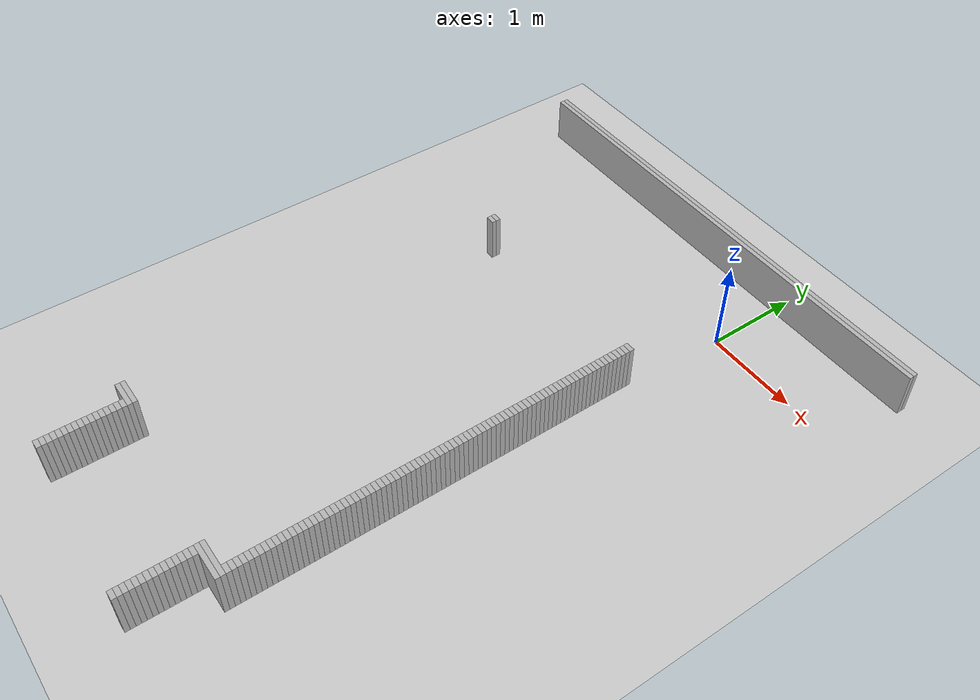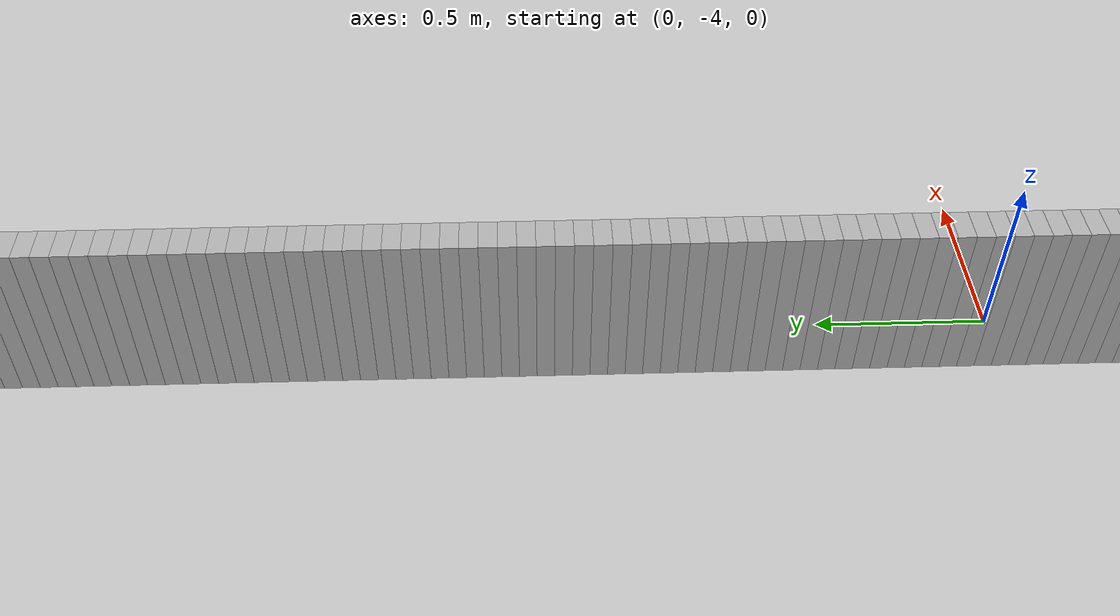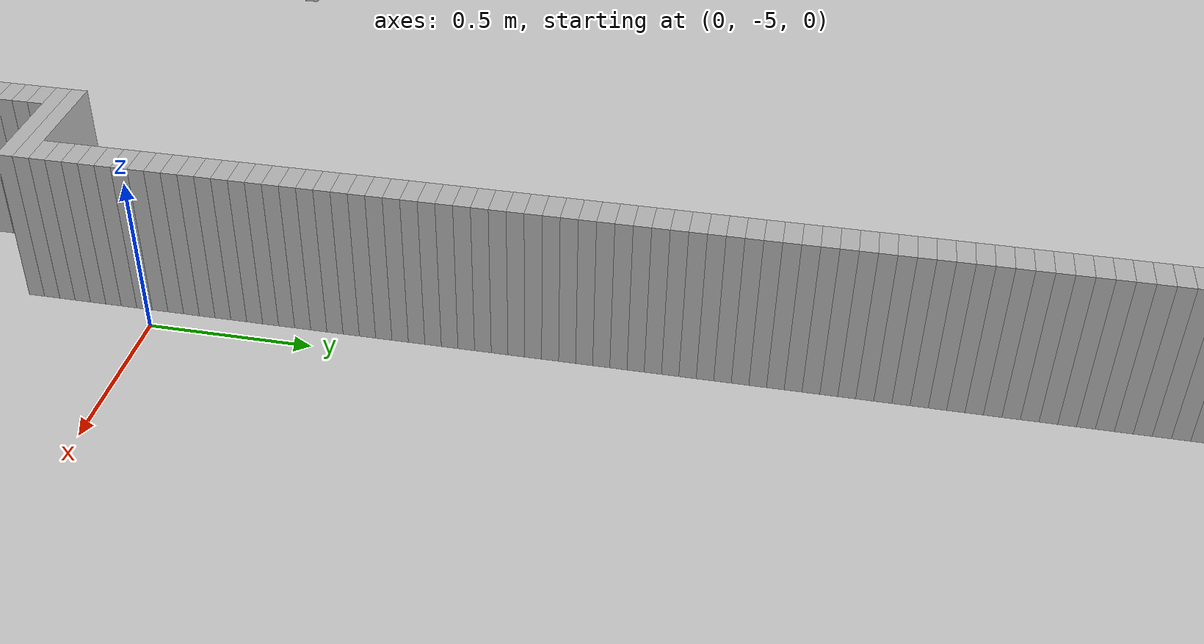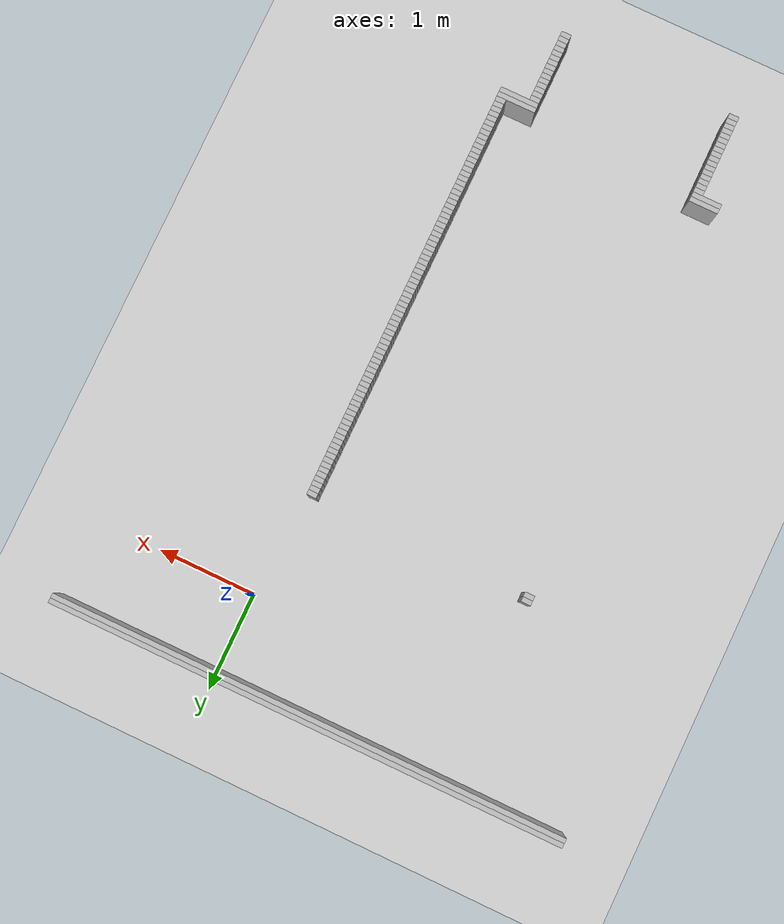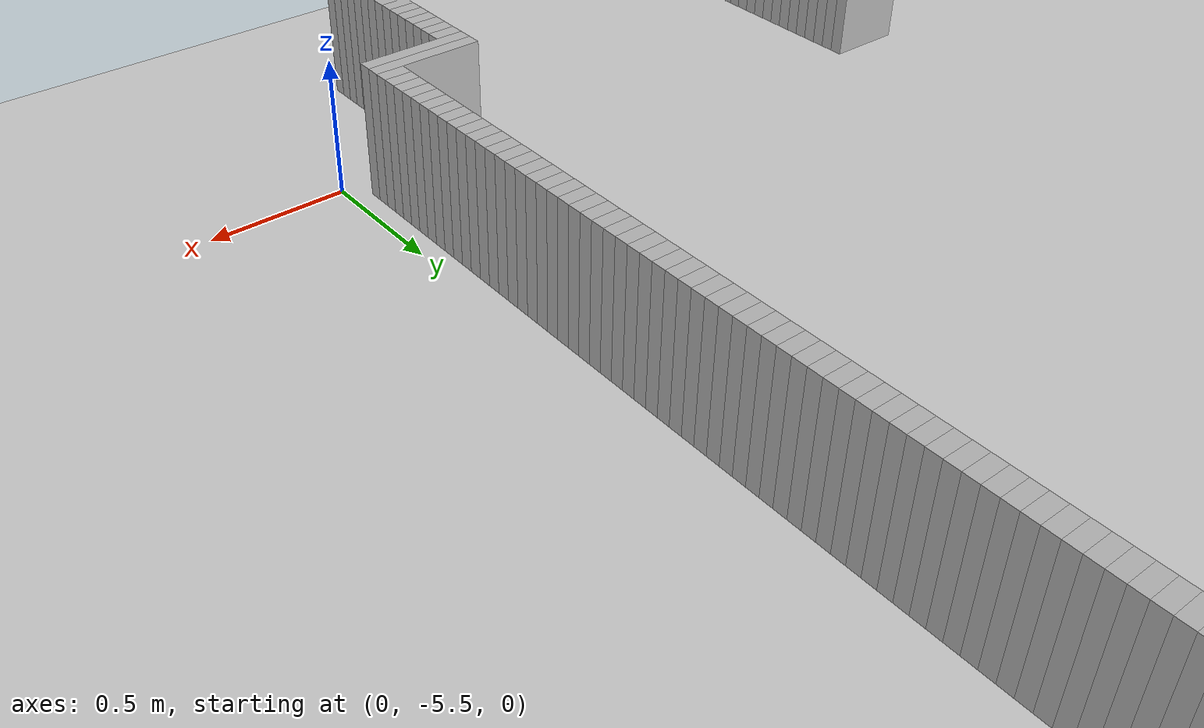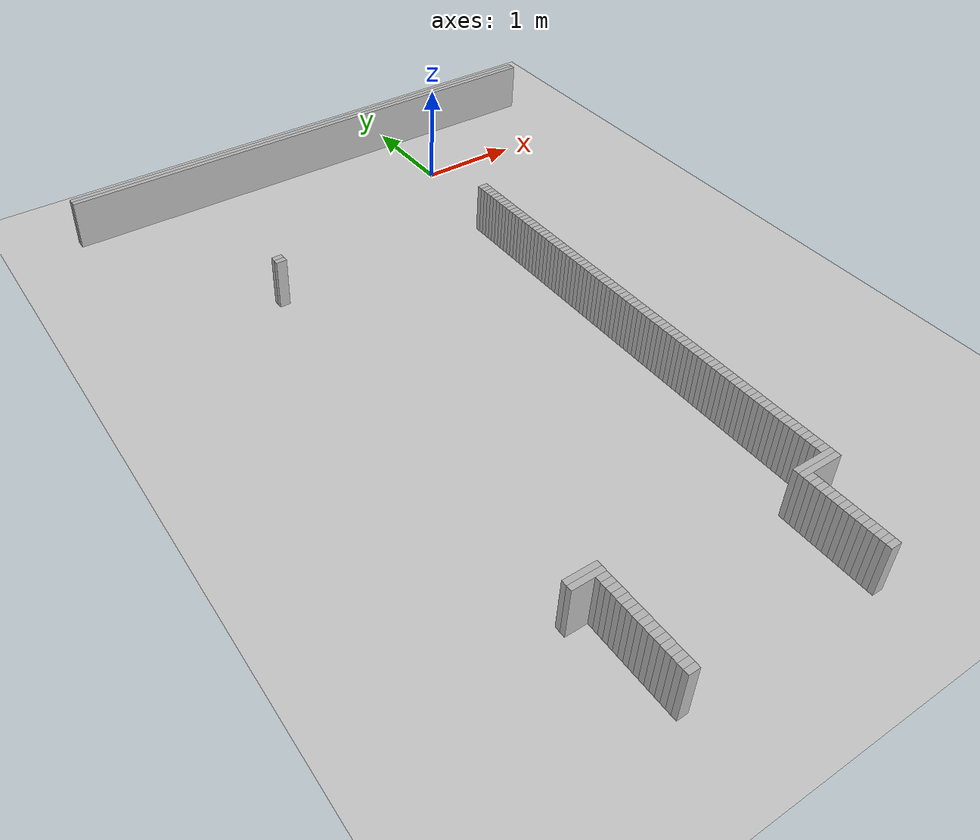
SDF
<sdf version="1.6">
 <world name="optimized_map_world">
  <include><uri>model://sun</uri></include>
  <include><uri>model://ground_plane</uri></include>
  <model name="obstacle_3">
   <static>true</static>
   <link name="link">
    <collision name="collision">
     <geometry><box><size>5.300000000000001 0.05 0.5</size></box></geometry>
    </collision>
    <visual name="visual"><geometry><box><size>5.300000000000001 0.05 0.5</size></box></geometry></visual>
   </link>
   <pose>-0.9749999999999979 0.8500000000000014 0.25 0 0 0</pose>
  </model>
  <model name="obstacle_5">
   <static>true</static>
   <link name="link">
    <collision name="collision">
     <geometry><box><size>5.300000000000001 0.05 0.5</size></box></geometry>
    </collision>
    <visual name="visual"><geometry><box><size>5.300000000000001 0.05 0.5</size></box></geometry></visual>
   </link>
   <pose>-0.9749999999999979 0.8000000000000007 0.25 0 0 0</pose>
  </model>
  <model name="obstacle_105">
   <static>true</static>
   <link name="link">
    <collision name="collision"><geometry><box><size>0.1 0.05 0.5</size></box></geometry></collision>
    <visual name="visual"><geometry><box><size>0.1 0.05 0.5</size></box></geometry></visual>
   </link>
   <pose>-2.3749999999999982 -1.0500000000000007 0.25 0 0 0</pose>
  </model>
  <model name="obstacle_112">
   <static>true</static>
   <link name="link">
    <collision name="collision"><geometry><box><size>0.1 0.05 0.5</size></box></geometry></collision>
    <visual name="visual"><geometry><box><size>0.1 0.05 0.5</size></box></geometry></visual>
   </link>
   <pose>-2.3749999999999982 -1.0999999999999979 0.25 0 0 0</pose>
  </model>
  <model name="obstacle_113">
   <static>true</static>
   <link name="link">
    <collision name="collision"><geometry><box><size>0.1 0.05 0.5</size></box></geometry></collision>
    <visual name="visual"><geometry><box><size>0.1 0.05 0.5</size></box></geometry></visual>
   </link>
   <pose>-0.125 -1.0999999999999979 0.25 0 0 0</pose>
  </model>
  <model name="obstacle_120">
   <static>true</static>
   <link name="link">
    <collision name="collision"><geometry><box><size>0.1 0.05 0.5</size></box></geometry></collision>
    <visual name="visual"><geometry><box><size>0.1 0.05 0.5</size></box></geometry></visual>
   </link>
   <pose>-0.125 -1.1499999999999986 0.25 0 0 0</pose>
  </model>
  <model name="obstacle_126">
   <static>true</static>
   <link name="link">
    <collision name="collision"><geometry><box><size>0.1 0.05 0.5</size></box></geometry></collision>
    <visual name="visual"><geometry><box><size>0.1 0.05 0.5</size></box></geometry></visual>
   </link>
   <pose>-0.125 -1.1999999999999993 0.25 0 0 0</pose>
  </model>
  <model name="obstacle_131">
   <static>true</static>
   <link name="link">
    <collision name="collision"><geometry><box><size>0.1 0.05 0.5</size></box></geometry></collision>
    <visual name="visual"><geometry><box><size>0.1 0.05 0.5</size></box></geometry></visual>
   </link>
   <pose>-0.125 -1.25 0.25 0 0 0</pose>
  </model>
  <model name="obstacle_135">
   <static>true</static>
   <link name="link">
    <collision name="collision"><geometry><box><size>0.1 0.05 0.5</size></box></geometry></collision>
    <visual name="visual"><geometry><box><size>0.1 0.05 0.5</size></box></geometry></visual>
   </link>
   <pose>-0.125 -1.3000000000000007 0.25 0 0 0</pose>
  </model>
  <model name="obstacle_139">
   <static>true</static>
   <link name="link">
    <collision name="collision"><geometry><box><size>0.1 0.05 0.5</size></box></geometry></collision>
    <visual name="visual"><geometry><box><size>0.1 0.05 0.5</size></box></geometry></visual>
   </link>
   <pose>-0.125 -1.3500000000000014 0.25 0 0 0</pose>
  </model>
  <model name="obstacle_143">
   <static>true</static>
   <link name="link">
    <collision name="collision"><geometry><box><size>0.1 0.05 0.5</size></box></geometry></collision>
    <visual name="visual"><geometry><box><size>0.1 0.05 0.5</size></box></geometry></visual>
   </link>
   <pose>-0.125 -1.3999999999999986 0.25 0 0 0</pose>
  </model>
  <model name="obstacle_147">
   <static>true</static>
   <link name="link">
    <collision name="collision"><geometry><box><size>0.1 0.05 0.5</size></box></geometry></collision>
    <visual name="visual"><geometry><box><size>0.1 0.05 0.5</size></box></geometry></visual>
   </link>
   <pose>-0.125 -1.4499999999999993 0.25 0 0 0</pose>
  </model>
  <model name="obstacle_151">
   <static>true</static>
   <link name="link">
    <collision name="collision"><geometry><box><size>0.1 0.05 0.5</size></box></geometry></collision>
    <visual name="visual"><geometry><box><size>0.1 0.05 0.5</size></box></geometry></visual>
   </link>
   <pose>-0.125 -1.5 0.25 0 0 0</pose>
  </model>
  <model name="obstacle_155">
   <static>true</static>
   <link name="link">
    <collision name="collision"><geometry><box><size>0.1 0.05 0.5</size></box></geometry></collision>
    <visual name="visual"><geometry><box><size>0.1 0.05 0.5</size></box></geometry></visual>
   </link>
   <pose>-0.125 -1.5500000000000007 0.25 0 0 0</pose>
  </model>
  <model name="obstacle_159">
   <static>true</static>
   <link name="link">
    <collision name="collision"><geometry><box><size>0.1 0.05 0.5</size></box></geometry></collision>
    <visual name="visual"><geometry><box><size>0.1 0.05 0.5</size></box></geometry></visual>
   </link>
   <pose>-0.125 -1.6000000000000014 0.25 0 0 0</pose>
  </model>
  <model name="obstacle_163">
   <static>true</static>
   <link name="link">
    <collision name="collision"><geometry><box><size>0.1 0.05 0.5</size></box></geometry></collision>
    <visual name="visual"><geometry><box><size>0.1 0.05 0.5</size></box></geometry></visual>
   </link>
   <pose>-0.125 -1.6499999999999986 0.25 0 0 0</pose>
  </model>
  <model name="obstacle_167">
   <static>true</static>
   <link name="link">
    <collision name="collision"><geometry><box><size>0.1 0.05 0.5</size></box></geometry></collision>
    <visual name="visual"><geometry><box><size>0.1 0.05 0.5</size></box></geometry></visual>
   </link>
   <pose>-0.125 -1.6999999999999993 0.25 0 0 0</pose>
  </model>
  <model name="obstacle_171">
   <static>true</static>
   <link name="link">
    <collision name="collision"><geometry><box><size>0.1 0.05 0.5</size></box></geometry></collision>
    <visual name="visual"><geometry><box><size>0.1 0.05 0.5</size></box></geometry></visual>
   </link>
   <pose>-0.125 -1.75 0.25 0 0 0</pose>
  </model>
  <model name="obstacle_175">
   <static>true</static>
   <link name="link">
    <collision name="collision"><geometry><box><size>0.1 0.05 0.5</size></box></geometry></collision>
    <visual name="visual"><geometry><box><size>0.1 0.05 0.5</size></box></geometry></visual>
   </link>
   <pose>-0.125 -1.8000000000000007 0.25 0 0 0</pose>
  </model>
  <model name="obstacle_179">
   <static>true</static>
   <link name="link">
    <collision name="collision"><geometry><box><size>0.1 0.05 0.5</size></box></geometry></collision>
    <visual name="visual"><geometry><box><size>0.1 0.05 0.5</size></box></geometry></visual>
   </link>
   <pose>-0.125 -1.8500000000000014 0.25 0 0 0</pose>
  </model>
  <model name="obstacle_183">
   <static>true</static>
   <link name="link">
    <collision name="collision"><geometry><box><size>0.1 0.05 0.5</size></box></geometry></collision>
    <visual name="visual"><geometry><box><size>0.1 0.05 0.5</size></box></geometry></visual>
   </link>
   <pose>-0.125 -1.8999999999999986 0.25 0 0 0</pose>
  </model>
  <model name="obstacle_187">
   <static>true</static>
   <link name="link">
    <collision name="collision"><geometry><box><size>0.1 0.05 0.5</size></box></geometry></collision>
    <visual name="visual"><geometry><box><size>0.1 0.05 0.5</size></box></geometry></visual>
   </link>
   <pose>-0.125 -1.9499999999999993 0.25 0 0 0</pose>
  </model>
  <model name="obstacle_191">
   <static>true</static>
   <link name="link">
    <collision name="collision"><geometry><box><size>0.1 0.05 0.5</size></box></geometry></collision>
    <visual name="visual"><geometry><box><size>0.1 0.05 0.5</size></box></geometry></visual>
   </link>
   <pose>-0.125 -2.0 0.25 0 0 0</pose>
  </model>
  <model name="obstacle_195">
   <static>true</static>
   <link name="link">
    <collision name="collision"><geometry><box><size>0.1 0.05 0.5</size></box></geometry></collision>
    <visual name="visual"><geometry><box><size>0.1 0.05 0.5</size></box></geometry></visual>
   </link>
   <pose>-0.125 -2.0500000000000007 0.25 0 0 0</pose>
  </model>
  <model name="obstacle_199">
   <static>true</static>
   <link name="link">
    <collision name="collision"><geometry><box><size>0.1 0.05 0.5</size></box></geometry></collision>
    <visual name="visual"><geometry><box><size>0.1 0.05 0.5</size></box></geometry></visual>
   </link>
   <pose>-0.125 -2.1000000000000014 0.25 0 0 0</pose>
  </model>
  <model name="obstacle_203">
   <static>true</static>
   <link name="link">
    <collision name="collision"><geometry><box><size>0.1 0.05 0.5</size></box></geometry></collision>
    <visual name="visual"><geometry><box><size>0.1 0.05 0.5</size></box></geometry></visual>
   </link>
   <pose>-0.125 -2.1499999999999986 0.25 0 0 0</pose>
  </model>
  <model name="obstacle_207">
   <static>true</static>
   <link name="link">
    <collision name="collision"><geometry><box><size>0.1 0.05 0.5</size></box></geometry></collision>
    <visual name="visual"><geometry><box><size>0.1 0.05 0.5</size></box></geometry></visual>
   </link>
   <pose>-0.125 -2.1999999999999993 0.25 0 0 0</pose>
  </model>
  <model name="obstacle_211">
   <static>true</static>
   <link name="link">
    <collision name="collision"><geometry><box><size>0.1 0.05 0.5</size></box></geometry></collision>
    <visual name="visual"><geometry><box><size>0.1 0.05 0.5</size></box></geometry></visual>
   </link>
   <pose>-0.125 -2.25 0.25 0 0 0</pose>
  </model>
  <model name="obstacle_215">
   <static>true</static>
   <link name="link">
    <collision name="collision"><geometry><box><size>0.1 0.05 0.5</size></box></geometry></collision>
    <visual name="visual"><geometry><box><size>0.1 0.05 0.5</size></box></geometry></visual>
   </link>
   <pose>-0.125 -2.3000000000000007 0.25 0 0 0</pose>
  </model>
  <model name="obstacle_219">
   <static>true</static>
   <link name="link">
    <collision name="collision"><geometry><box><size>0.1 0.05 0.5</size></box></geometry></collision>
    <visual name="visual"><geometry><box><size>0.1 0.05 0.5</size></box></geometry></visual>
   </link>
   <pose>-0.125 -2.3500000000000014 0.25 0 0 0</pose>
  </model>
  <model name="obstacle_223">
   <static>true</static>
   <link name="link">
    <collision name="collision"><geometry><box><size>0.1 0.05 0.5</size></box></geometry></collision>
    <visual name="visual"><geometry><box><size>0.1 0.05 0.5</size></box></geometry></visual>
   </link>
   <pose>-0.125 -2.3999999999999986 0.25 0 0 0</pose>
  </model>
  <model name="obstacle_227">
   <static>true</static>
   <link name="link">
    <collision name="collision"><geometry><box><size>0.1 0.05 0.5</size></box></geometry></collision>
    <visual name="visual"><geometry><box><size>0.1 0.05 0.5</size></box></geometry></visual>
   </link>
   <pose>-0.125 -2.4499999999999993 0.25 0 0 0</pose>
  </model>
  <model name="obstacle_231">
   <static>true</static>
   <link name="link">
    <collision name="collision"><geometry><box><size>0.1 0.05 0.5</size></box></geometry></collision>
    <visual name="visual"><geometry><box><size>0.1 0.05 0.5</size></box></geometry></visual>
   </link>
   <pose>-0.125 -2.5 0.25 0 0 0</pose>
  </model>
  <model name="obstacle_235">
   <static>true</static>
   <link name="link">
    <collision name="collision"><geometry><box><size>0.1 0.05 0.5</size></box></geometry></collision>
    <visual name="visual"><geometry><box><size>0.1 0.05 0.5</size></box></geometry></visual>
   </link>
   <pose>-0.125 -2.5500000000000007 0.25 0 0 0</pose>
  </model>
  <model name="obstacle_239">
   <static>true</static>
   <link name="link">
    <collision name="collision"><geometry><box><size>0.1 0.05 0.5</size></box></geometry></collision>
    <visual name="visual"><geometry><box><size>0.1 0.05 0.5</size></box></geometry></visual>
   </link>
   <pose>-0.125 -2.6000000000000014 0.25 0 0 0</pose>
  </model>
  <model name="obstacle_243">
   <static>true</static>
   <link name="link">
    <collision name="collision"><geometry><box><size>0.1 0.05 0.5</size></box></geometry></collision>
    <visual name="visual"><geometry><box><size>0.1 0.05 0.5</size></box></geometry></visual>
   </link>
   <pose>-0.125 -2.6499999999999986 0.25 0 0 0</pose>
  </model>
  <model name="obstacle_247">
   <static>true</static>
   <link name="link">
    <collision name="collision"><geometry><box><size>0.1 0.05 0.5</size></box></geometry></collision>
    <visual name="visual"><geometry><box><size>0.1 0.05 0.5</size></box></geometry></visual>
   </link>
   <pose>-0.125 -2.6999999999999993 0.25 0 0 0</pose>
  </model>
  <model name="obstacle_251">
   <static>true</static>
   <link name="link">
    <collision name="collision"><geometry><box><size>0.1 0.05 0.5</size></box></geometry></collision>
    <visual name="visual"><geometry><box><size>0.1 0.05 0.5</size></box></geometry></visual>
   </link>
   <pose>-0.125 -2.75 0.25 0 0 0</pose>
  </model>
  <model name="obstacle_255">
   <static>true</static>
   <link name="link">
    <collision name="collision"><geometry><box><size>0.1 0.05 0.5</size></box></geometry></collision>
    <visual name="visual"><geometry><box><size>0.1 0.05 0.5</size></box></geometry></visual>
   </link>
   <pose>-0.125 -2.8000000000000007 0.25 0 0 0</pose>
  </model>
  <model name="obstacle_259">
   <static>true</static>
   <link name="link">
    <collision name="collision"><geometry><box><size>0.1 0.05 0.5</size></box></geometry></collision>
    <visual name="visual"><geometry><box><size>0.1 0.05 0.5</size></box></geometry></visual>
   </link>
   <pose>-0.125 -2.8500000000000014 0.25 0 0 0</pose>
  </model>
  <model name="obstacle_263">
   <static>true</static>
   <link name="link">
    <collision name="collision"><geometry><box><size>0.1 0.05 0.5</size></box></geometry></collision>
    <visual name="visual"><geometry><box><size>0.1 0.05 0.5</size></box></geometry></visual>
   </link>
   <pose>-0.125 -2.8999999999999986 0.25 0 0 0</pose>
  </model>
  <model name="obstacle_267">
   <static>true</static>
   <link name="link">
    <collision name="collision"><geometry><box><size>0.1 0.05 0.5</size></box></geometry></collision>
    <visual name="visual"><geometry><box><size>0.1 0.05 0.5</size></box></geometry></visual>
   </link>
   <pose>-0.125 -2.9499999999999993 0.25 0 0 0</pose>
  </model>
  <model name="obstacle_271">
   <static>true</static>
   <link name="link">
    <collision name="collision"><geometry><box><size>0.1 0.05 0.5</size></box></geometry></collision>
    <visual name="visual"><geometry><box><size>0.1 0.05 0.5</size></box></geometry></visual>
   </link>
   <pose>-0.125 -3.0 0.25 0 0 0</pose>
  </model>
  <model name="obstacle_275">
   <static>true</static>
   <link name="link">
    <collision name="collision"><geometry><box><size>0.1 0.05 0.5</size></box></geometry></collision>
    <visual name="visual"><geometry><box><size>0.1 0.05 0.5</size></box></geometry></visual>
   </link>
   <pose>-0.125 -3.0500000000000007 0.25 0 0 0</pose>
  </model>
  <model name="obstacle_279">
   <static>true</static>
   <link name="link">
    <collision name="collision"><geometry><box><size>0.1 0.05 0.5</size></box></geometry></collision>
    <visual name="visual"><geometry><box><size>0.1 0.05 0.5</size></box></geometry></visual>
   </link>
   <pose>-0.125 -3.1000000000000014 0.25 0 0 0</pose>
  </model>
  <model name="obstacle_283">
   <static>true</static>
   <link name="link">
    <collision name="collision"><geometry><box><size>0.1 0.05 0.5</size></box></geometry></collision>
    <visual name="visual"><geometry><box><size>0.1 0.05 0.5</size></box></geometry></visual>
   </link>
   <pose>-0.125 -3.1499999999999986 0.25 0 0 0</pose>
  </model>
  <model name="obstacle_287">
   <static>true</static>
   <link name="link">
    <collision name="collision"><geometry><box><size>0.1 0.05 0.5</size></box></geometry></collision>
    <visual name="visual"><geometry><box><size>0.1 0.05 0.5</size></box></geometry></visual>
   </link>
   <pose>-0.125 -3.1999999999999993 0.25 0 0 0</pose>
  </model>
  <model name="obstacle_291">
   <static>true</static>
   <link name="link">
    <collision name="collision"><geometry><box><size>0.1 0.05 0.5</size></box></geometry></collision>
    <visual name="visual"><geometry><box><size>0.1 0.05 0.5</size></box></geometry></visual>
   </link>
   <pose>-0.125 -3.25 0.25 0 0 0</pose>
  </model>
  <model name="obstacle_295">
   <static>true</static>
   <link name="link">
    <collision name="collision"><geometry><box><size>0.1 0.05 0.5</size></box></geometry></collision>
    <visual name="visual"><geometry><box><size>0.1 0.05 0.5</size></box></geometry></visual>
   </link>
   <pose>-0.125 -3.3000000000000007 0.25 0 0 0</pose>
  </model>
  <model name="obstacle_299">
   <static>true</static>
   <link name="link">
    <collision name="collision"><geometry><box><size>0.1 0.05 0.5</size></box></geometry></collision>
    <visual name="visual"><geometry><box><size>0.1 0.05 0.5</size></box></geometry></visual>
   </link>
   <pose>-0.125 -3.3500000000000014 0.25 0 0 0</pose>
  </model>
  <model name="obstacle_303">
   <static>true</static>
   <link name="link">
    <collision name="collision"><geometry><box><size>0.1 0.05 0.5</size></box></geometry></collision>
    <visual name="visual"><geometry><box><size>0.1 0.05 0.5</size></box></geometry></visual>
   </link>
   <pose>-0.125 -3.3999999999999986 0.25 0 0 0</pose>
  </model>
  <model name="obstacle_307">
   <static>true</static>
   <link name="link">
    <collision name="collision"><geometry><box><size>0.1 0.05 0.5</size></box></geometry></collision>
    <visual name="visual"><geometry><box><size>0.1 0.05 0.5</size></box></geometry></visual>
   </link>
   <pose>-0.125 -3.4499999999999993 0.25 0 0 0</pose>
  </model>
  <model name="obstacle_311">
   <static>true</static>
   <link name="link">
    <collision name="collision"><geometry><box><size>0.1 0.05 0.5</size></box></geometry></collision>
    <visual name="visual"><geometry><box><size>0.1 0.05 0.5</size></box></geometry></visual>
   </link>
   <pose>-0.125 -3.5 0.25 0 0 0</pose>
  </model>
  <model name="obstacle_315">
   <static>true</static>
   <link name="link">
    <collision name="collision"><geometry><box><size>0.1 0.05 0.5</size></box></geometry></collision>
    <visual name="visual"><geometry><box><size>0.1 0.05 0.5</size></box></geometry></visual>
   </link>
   <pose>-0.125 -3.5500000000000007 0.25 0 0 0</pose>
  </model>
  <model name="obstacle_319">
   <static>true</static>
   <link name="link">
    <collision name="collision"><geometry><box><size>0.1 0.05 0.5</size></box></geometry></collision>
    <visual name="visual"><geometry><box><size>0.1 0.05 0.5</size></box></geometry></visual>
   </link>
   <pose>-0.125 -3.6000000000000014 0.25 0 0 0</pose>
  </model>
  <model name="obstacle_323">
   <static>true</static>
   <link name="link">
    <collision name="collision"><geometry><box><size>0.1 0.05 0.5</size></box></geometry></collision>
    <visual name="visual"><geometry><box><size>0.1 0.05 0.5</size></box></geometry></visual>
   </link>
   <pose>-0.125 -3.6499999999999986 0.25 0 0 0</pose>
  </model>
  <model name="obstacle_327">
   <static>true</static>
   <link name="link">
    <collision name="collision"><geometry><box><size>0.1 0.05 0.5</size></box></geometry></collision>
    <visual name="visual"><geometry><box><size>0.1 0.05 0.5</size></box></geometry></visual>
   </link>
   <pose>-0.125 -3.6999999999999993 0.25 0 0 0</pose>
  </model>
  <model name="obstacle_331">
   <static>true</static>
   <link name="link">
    <collision name="collision"><geometry><box><size>0.1 0.05 0.5</size></box></geometry></collision>
    <visual name="visual"><geometry><box><size>0.1 0.05 0.5</size></box></geometry></visual>
   </link>
   <pose>-0.125 -3.75 0.25 0 0 0</pose>
  </model>
  <model name="obstacle_335">
   <static>true</static>
   <link name="link">
    <collision name="collision"><geometry><box><size>0.1 0.05 0.5</size></box></geometry></collision>
    <visual name="visual"><geometry><box><size>0.1 0.05 0.5</size></box></geometry></visual>
   </link>
   <pose>-0.125 -3.8000000000000007 0.25 0 0 0</pose>
  </model>
  <model name="obstacle_339">
   <static>true</static>
   <link name="link">
    <collision name="collision"><geometry><box><size>0.1 0.05 0.5</size></box></geometry></collision>
    <visual name="visual"><geometry><box><size>0.1 0.05 0.5</size></box></geometry></visual>
   </link>
   <pose>-0.125 -3.8500000000000014 0.25 0 0 0</pose>
  </model>
  <model name="obstacle_343">
   <static>true</static>
   <link name="link">
    <collision name="collision"><geometry><box><size>0.1 0.05 0.5</size></box></geometry></collision>
    <visual name="visual"><geometry><box><size>0.1 0.05 0.5</size></box></geometry></visual>
   </link>
   <pose>-0.125 -3.8999999999999986 0.25 0 0 0</pose>
  </model>
  <model name="obstacle_347">
   <static>true</static>
   <link name="link">
    <collision name="collision"><geometry><box><size>0.1 0.05 0.5</size></box></geometry></collision>
    <visual name="visual"><geometry><box><size>0.1 0.05 0.5</size></box></geometry></visual>
   </link>
   <pose>-0.125 -3.9499999999999993 0.25 0 0 0</pose>
  </model>
  <model name="obstacle_351">
   <static>true</static>
   <link name="link">
    <collision name="collision"><geometry><box><size>0.1 0.05 0.5</size></box></geometry></collision>
    <visual name="visual"><geometry><box><size>0.1 0.05 0.5</size></box></geometry></visual>
   </link>
   <pose>-0.125 -4.0 0.25 0 0 0</pose>
  </model>
  <model name="obstacle_355">
   <static>true</static>
   <link name="link">
    <collision name="collision"><geometry><box><size>0.1 0.05 0.5</size></box></geometry></collision>
    <visual name="visual"><geometry><box><size>0.1 0.05 0.5</size></box></geometry></visual>
   </link>
   <pose>-0.125 -4.050000000000001 0.25 0 0 0</pose>
  </model>
  <model name="obstacle_359">
   <static>true</static>
   <link name="link">
    <collision name="collision"><geometry><box><size>0.1 0.05 0.5</size></box></geometry></collision>
    <visual name="visual"><geometry><box><size>0.1 0.05 0.5</size></box></geometry></visual>
   </link>
   <pose>-0.125 -4.100000000000001 0.25 0 0 0</pose>
  </model>
  <model name="obstacle_363">
   <static>true</static>
   <link name="link">
    <collision name="collision"><geometry><box><size>0.1 0.05 0.5</size></box></geometry></collision>
    <visual name="visual"><geometry><box><size>0.1 0.05 0.5</size></box></geometry></visual>
   </link>
   <pose>-0.125 -4.149999999999999 0.25 0 0 0</pose>
  </model>
  <model name="obstacle_367">
   <static>true</static>
   <link name="link">
    <collision name="collision"><geometry><box><size>0.1 0.05 0.5</size></box></geometry></collision>
    <visual name="visual"><geometry><box><size>0.1 0.05 0.5</size></box></geometry></visual>
   </link>
   <pose>-0.125 -4.199999999999999 0.25 0 0 0</pose>
  </model>
  <model name="obstacle_371">
   <static>true</static>
   <link name="link">
    <collision name="collision"><geometry><box><size>0.1 0.05 0.5</size></box></geometry></collision>
    <visual name="visual"><geometry><box><size>0.1 0.05 0.5</size></box></geometry></visual>
   </link>
   <pose>-0.125 -4.25 0.25 0 0 0</pose>
  </model>
  <model name="obstacle_375">
   <static>true</static>
   <link name="link">
    <collision name="collision"><geometry><box><size>0.1 0.05 0.5</size></box></geometry></collision>
    <visual name="visual"><geometry><box><size>0.1 0.05 0.5</size></box></geometry></visual>
   </link>
   <pose>-0.125 -4.300000000000001 0.25 0 0 0</pose>
  </model>
  <model name="obstacle_379">
   <static>true</static>
   <link name="link">
    <collision name="collision"><geometry><box><size>0.1 0.05 0.5</size></box></geometry></collision>
    <visual name="visual"><geometry><box><size>0.1 0.05 0.5</size></box></geometry></visual>
   </link>
   <pose>-0.125 -4.35 0.25 0 0 0</pose>
  </model>
  <model name="obstacle_383">
   <static>true</static>
   <link name="link">
    <collision name="collision"><geometry><box><size>0.1 0.05 0.5</size></box></geometry></collision>
    <visual name="visual"><geometry><box><size>0.1 0.05 0.5</size></box></geometry></visual>
   </link>
   <pose>-0.125 -4.4 0.25 0 0 0</pose>
  </model>
  <model name="obstacle_387">
   <static>true</static>
   <link name="link">
    <collision name="collision"><geometry><box><size>0.1 0.05 0.5</size></box></geometry></collision>
    <visual name="visual"><geometry><box><size>0.1 0.05 0.5</size></box></geometry></visual>
   </link>
   <pose>-0.125 -4.449999999999999 0.25 0 0 0</pose>
  </model>
  <model name="obstacle_391">
   <static>true</static>
   <link name="link">
    <collision name="collision"><geometry><box><size>0.1 0.05 0.5</size></box></geometry></collision>
    <visual name="visual"><geometry><box><size>0.1 0.05 0.5</size></box></geometry></visual>
   </link>
   <pose>-0.125 -4.5 0.25 0 0 0</pose>
  </model>
  <model name="obstacle_395">
   <static>true</static>
   <link name="link">
    <collision name="collision"><geometry><box><size>0.1 0.05 0.5</size></box></geometry></collision>
    <visual name="visual"><geometry><box><size>0.1 0.05 0.5</size></box></geometry></visual>
   </link>
   <pose>-0.125 -4.550000000000001 0.25 0 0 0</pose>
  </model>
  <model name="obstacle_399">
   <static>true</static>
   <link name="link">
    <collision name="collision"><geometry><box><size>0.1 0.05 0.5</size></box></geometry></collision>
    <visual name="visual"><geometry><box><size>0.1 0.05 0.5</size></box></geometry></visual>
   </link>
   <pose>-0.125 -4.6 0.25 0 0 0</pose>
  </model>
  <model name="obstacle_403">
   <static>true</static>
   <link name="link">
    <collision name="collision"><geometry><box><size>0.1 0.05 0.5</size></box></geometry></collision>
    <visual name="visual"><geometry><box><size>0.1 0.05 0.5</size></box></geometry></visual>
   </link>
   <pose>-0.125 -4.65 0.25 0 0 0</pose>
  </model>
  <model name="obstacle_407">
   <static>true</static>
   <link name="link">
    <collision name="collision"><geometry><box><size>0.1 0.05 0.5</size></box></geometry></collision>
    <visual name="visual"><geometry><box><size>0.1 0.05 0.5</size></box></geometry></visual>
   </link>
   <pose>-0.125 -4.699999999999999 0.25 0 0 0</pose>
  </model>
  <model name="obstacle_411">
   <static>true</static>
   <link name="link">
    <collision name="collision"><geometry><box><size>0.1 0.05 0.5</size></box></geometry></collision>
    <visual name="visual"><geometry><box><size>0.1 0.05 0.5</size></box></geometry></visual>
   </link>
   <pose>-0.125 -4.75 0.25 0 0 0</pose>
  </model>
  <model name="obstacle_415">
   <static>true</static>
   <link name="link">
    <collision name="collision"><geometry><box><size>0.1 0.05 0.5</size></box></geometry></collision>
    <visual name="visual"><geometry><box><size>0.1 0.05 0.5</size></box></geometry></visual>
   </link>
   <pose>-0.125 -4.800000000000001 0.25 0 0 0</pose>
  </model>
  <model name="obstacle_419">
   <static>true</static>
   <link name="link">
    <collision name="collision"><geometry><box><size>0.1 0.05 0.5</size></box></geometry></collision>
    <visual name="visual"><geometry><box><size>0.1 0.05 0.5</size></box></geometry></visual>
   </link>
   <pose>-0.125 -4.85 0.25 0 0 0</pose>
  </model>
  <model name="obstacle_423">
   <static>true</static>
   <link name="link">
    <collision name="collision"><geometry><box><size>0.1 0.05 0.5</size></box></geometry></collision>
    <visual name="visual"><geometry><box><size>0.1 0.05 0.5</size></box></geometry></visual>
   </link>
   <pose>-0.125 -4.9 0.25 0 0 0</pose>
  </model>
  <model name="obstacle_427">
   <static>true</static>
   <link name="link">
    <collision name="collision"><geometry><box><size>0.1 0.05 0.5</size></box></geometry></collision>
    <visual name="visual"><geometry><box><size>0.1 0.05 0.5</size></box></geometry></visual>
   </link>
   <pose>-0.125 -4.949999999999999 0.25 0 0 0</pose>
  </model>
  <model name="obstacle_431">
   <static>true</static>
   <link name="link">
    <collision name="collision"><geometry><box><size>0.1 0.05 0.5</size></box></geometry></collision>
    <visual name="visual"><geometry><box><size>0.1 0.05 0.5</size></box></geometry></visual>
   </link>
   <pose>-0.125 -5.0 0.25 0 0 0</pose>
  </model>
  <model name="obstacle_435">
   <static>true</static>
   <link name="link">
    <collision name="collision"><geometry><box><size>0.1 0.05 0.5</size></box></geometry></collision>
    <visual name="visual"><geometry><box><size>0.1 0.05 0.5</size></box></geometry></visual>
   </link>
   <pose>-0.125 -5.050000000000001 0.25 0 0 0</pose>
  </model>
  <model name="obstacle_439">
   <static>true</static>
   <link name="link">
    <collision name="collision"><geometry><box><size>0.1 0.05 0.5</size></box></geometry></collision>
    <visual name="visual"><geometry><box><size>0.1 0.05 0.5</size></box></geometry></visual>
   </link>
   <pose>-0.125 -5.1 0.25 0 0 0</pose>
  </model>
  <model name="obstacle_443">
   <static>true</static>
   <link name="link">
    <collision name="collision"><geometry><box><size>0.1 0.05 0.5</size></box></geometry></collision>
    <visual name="visual"><geometry><box><size>0.1 0.05 0.5</size></box></geometry></visual>
   </link>
   <pose>-0.125 -5.15 0.25 0 0 0</pose>
  </model>
  <model name="obstacle_446">
   <static>true</static>
   <link name="link">
    <collision name="collision">
     <geometry><box><size>0.30000000000000004 0.05 0.5</size></box></geometry>
    </collision>
    <visual name="visual"><geometry><box><size>0.30000000000000004 0.05 0.5</size></box></geometry></visual>
   </link>
   <pose>-2.3249999999999993 -5.199999999999999 0.25 0 0 0</pose>
  </model>
  <model name="obstacle_447">
   <static>true</static>
   <link name="link">
    <collision name="collision"><geometry><box><size>0.1 0.05 0.5</size></box></geometry></collision>
    <visual name="visual"><geometry><box><size>0.1 0.05 0.5</size></box></geometry></visual>
   </link>
   <pose>-0.125 -5.199999999999999 0.25 0 0 0</pose>
  </model>
  <model name="obstacle_450">
   <static>true</static>
   <link name="link">
    <collision name="collision">
     <geometry><box><size>0.30000000000000004 0.05 0.5</size></box></geometry>
    </collision>
    <visual name="visual"><geometry><box><size>0.30000000000000004 0.05 0.5</size></box></geometry></visual>
   </link>
   <pose>-2.3249999999999993 -5.25 0.25 0 0 0</pose>
  </model>
  <model name="obstacle_451">
   <static>true</static>
   <link name="link">
    <collision name="collision"><geometry><box><size>0.1 0.05 0.5</size></box></geometry></collision>
    <visual name="visual"><geometry><box><size>0.1 0.05 0.5</size></box></geometry></visual>
   </link>
   <pose>-0.125 -5.25 0.25 0 0 0</pose>
  </model>
  <model name="obstacle_454">
   <static>true</static>
   <link name="link">
    <collision name="collision"><geometry><box><size>0.1 0.05 0.5</size></box></geometry></collision>
    <visual name="visual"><geometry><box><size>0.1 0.05 0.5</size></box></geometry></visual>
   </link>
   <pose>-2.224999999999998 -5.300000000000001 0.25 0 0 0</pose>
  </model>
  <model name="obstacle_455">
   <static>true</static>
   <link name="link">
    <collision name="collision"><geometry><box><size>0.1 0.05 0.5</size></box></geometry></collision>
    <visual name="visual"><geometry><box><size>0.1 0.05 0.5</size></box></geometry></visual>
   </link>
   <pose>-0.125 -5.300000000000001 0.25 0 0 0</pose>
  </model>
  <model name="obstacle_458">
   <static>true</static>
   <link name="link">
    <collision name="collision"><geometry><box><size>0.1 0.05 0.5</size></box></geometry></collision>
    <visual name="visual"><geometry><box><size>0.1 0.05 0.5</size></box></geometry></visual>
   </link>
   <pose>-2.224999999999998 -5.35 0.25 0 0 0</pose>
  </model>
  <model name="obstacle_459">
   <static>true</static>
   <link name="link">
    <collision name="collision"><geometry><box><size>0.4 0.05 0.5</size></box></geometry></collision>
    <visual name="visual"><geometry><box><size>0.4 0.05 0.5</size></box></geometry></visual>
   </link>
   <pose>-0.2749999999999986 -5.35 0.25 0 0 0</pose>
  </model>
  <model name="obstacle_462">
   <static>true</static>
   <link name="link">
    <collision name="collision"><geometry><box><size>0.1 0.05 0.5</size></box></geometry></collision>
    <visual name="visual"><geometry><box><size>0.1 0.05 0.5</size></box></geometry></visual>
   </link>
   <pose>-2.224999999999998 -5.4 0.25 0 0 0</pose>
  </model>
  <model name="obstacle_463">
   <static>true</static>
   <link name="link">
    <collision name="collision"><geometry><box><size>0.4 0.05 0.5</size></box></geometry></collision>
    <visual name="visual"><geometry><box><size>0.4 0.05 0.5</size></box></geometry></visual>
   </link>
   <pose>-0.2749999999999986 -5.4 0.25 0 0 0</pose>
  </model>
  <model name="obstacle_466">
   <static>true</static>
   <link name="link">
    <collision name="collision"><geometry><box><size>0.1 0.05 0.5</size></box></geometry></collision>
    <visual name="visual"><geometry><box><size>0.1 0.05 0.5</size></box></geometry></visual>
   </link>
   <pose>-2.224999999999998 -5.449999999999999 0.25 0 0 0</pose>
  </model>
  <model name="obstacle_467">
   <static>true</static>
   <link name="link">
    <collision name="collision"><geometry><box><size>0.1 0.05 0.5</size></box></geometry></collision>
    <visual name="visual"><geometry><box><size>0.1 0.05 0.5</size></box></geometry></visual>
   </link>
   <pose>-0.42499999999999716 -5.449999999999999 0.25 0 0 0</pose>
  </model>
  <model name="obstacle_470">
   <static>true</static>
   <link name="link">
    <collision name="collision"><geometry><box><size>0.1 0.05 0.5</size></box></geometry></collision>
    <visual name="visual"><geometry><box><size>0.1 0.05 0.5</size></box></geometry></visual>
   </link>
   <pose>-2.224999999999998 -5.5 0.25 0 0 0</pose>
  </model>
  <model name="obstacle_471">
   <static>true</static>
   <link name="link">
    <collision name="collision"><geometry><box><size>0.1 0.05 0.5</size></box></geometry></collision>
    <visual name="visual"><geometry><box><size>0.1 0.05 0.5</size></box></geometry></visual>
   </link>
   <pose>-0.42499999999999716 -5.5 0.25 0 0 0</pose>
  </model>
  <model name="obstacle_474">
   <static>true</static>
   <link name="link">
    <collision name="collision"><geometry><box><size>0.1 0.05 0.5</size></box></geometry></collision>
    <visual name="visual"><geometry><box><size>0.1 0.05 0.5</size></box></geometry></visual>
   </link>
   <pose>-2.224999999999998 -5.550000000000001 0.25 0 0 0</pose>
  </model>
  <model name="obstacle_475">
   <static>true</static>
   <link name="link">
    <collision name="collision"><geometry><box><size>0.1 0.05 0.5</size></box></geometry></collision>
    <visual name="visual"><geometry><box><size>0.1 0.05 0.5</size></box></geometry></visual>
   </link>
   <pose>-0.42499999999999716 -5.550000000000001 0.25 0 0 0</pose>
  </model>
  <model name="obstacle_478">
   <static>true</static>
   <link name="link">
    <collision name="collision"><geometry><box><size>0.1 0.05 0.5</size></box></geometry></collision>
    <visual name="visual"><geometry><box><size>0.1 0.05 0.5</size></box></geometry></visual>
   </link>
   <pose>-2.224999999999998 -5.6 0.25 0 0 0</pose>
  </model>
  <model name="obstacle_479">
   <static>true</static>
   <link name="link">
    <collision name="collision"><geometry><box><size>0.1 0.05 0.5</size></box></geometry></collision>
    <visual name="visual"><geometry><box><size>0.1 0.05 0.5</size></box></geometry></visual>
   </link>
   <pose>-0.42499999999999716 -5.6 0.25 0 0 0</pose>
  </model>
  <model name="obstacle_482">
   <static>true</static>
   <link name="link">
    <collision name="collision"><geometry><box><size>0.1 0.05 0.5</size></box></geometry></collision>
    <visual name="visual"><geometry><box><size>0.1 0.05 0.5</size></box></geometry></visual>
   </link>
   <pose>-2.224999999999998 -5.65 0.25 0 0 0</pose>
  </model>
  <model name="obstacle_483">
   <static>true</static>
   <link name="link">
    <collision name="collision"><geometry><box><size>0.1 0.05 0.5</size></box></geometry></collision>
    <visual name="visual"><geometry><box><size>0.1 0.05 0.5</size></box></geometry></visual>
   </link>
   <pose>-0.42499999999999716 -5.65 0.25 0 0 0</pose>
  </model>
  <model name="obstacle_486">
   <static>true</static>
   <link name="link">
    <collision name="collision"><geometry><box><size>0.1 0.05 0.5</size></box></geometry></collision>
    <visual name="visual"><geometry><box><size>0.1 0.05 0.5</size></box></geometry></visual>
   </link>
   <pose>-2.224999999999998 -5.699999999999999 0.25 0 0 0</pose>
  </model>
  <model name="obstacle_487">
   <static>true</static>
   <link name="link">
    <collision name="collision"><geometry><box><size>0.1 0.05 0.5</size></box></geometry></collision>
    <visual name="visual"><geometry><box><size>0.1 0.05 0.5</size></box></geometry></visual>
   </link>
   <pose>-0.42499999999999716 -5.699999999999999 0.25 0 0 0</pose>
  </model>
  <model name="obstacle_490">
   <static>true</static>
   <link name="link">
    <collision name="collision"><geometry><box><size>0.1 0.05 0.5</size></box></geometry></collision>
    <visual name="visual"><geometry><box><size>0.1 0.05 0.5</size></box></geometry></visual>
   </link>
   <pose>-2.224999999999998 -5.75 0.25 0 0 0</pose>
  </model>
  <model name="obstacle_491">
   <static>true</static>
   <link name="link">
    <collision name="collision"><geometry><box><size>0.1 0.05 0.5</size></box></geometry></collision>
    <visual name="visual"><geometry><box><size>0.1 0.05 0.5</size></box></geometry></visual>
   </link>
   <pose>-0.42499999999999716 -5.75 0.25 0 0 0</pose>
  </model>
  <model name="obstacle_494">
   <static>true</static>
   <link name="link">
    <collision name="collision"><geometry><box><size>0.1 0.05 0.5</size></box></geometry></collision>
    <visual name="visual"><geometry><box><size>0.1 0.05 0.5</size></box></geometry></visual>
   </link>
   <pose>-2.224999999999998 -5.800000000000001 0.25 0 0 0</pose>
  </model>
  <model name="obstacle_495">
   <static>true</static>
   <link name="link">
    <collision name="collision"><geometry><box><size>0.1 0.05 0.5</size></box></geometry></collision>
    <visual name="visual"><geometry><box><size>0.1 0.05 0.5</size></box></geometry></visual>
   </link>
   <pose>-0.42499999999999716 -5.800000000000001 0.25 0 0 0</pose>
  </model>
  <model name="obstacle_498">
   <static>true</static>
   <link name="link">
    <collision name="collision"><geometry><box><size>0.1 0.05 0.5</size></box></geometry></collision>
    <visual name="visual"><geometry><box><size>0.1 0.05 0.5</size></box></geometry></visual>
   </link>
   <pose>-2.224999999999998 -5.85 0.25 0 0 0</pose>
  </model>
  <model name="obstacle_499">
   <static>true</static>
   <link name="link">
    <collision name="collision"><geometry><box><size>0.1 0.05 0.5</size></box></geometry></collision>
    <visual name="visual"><geometry><box><size>0.1 0.05 0.5</size></box></geometry></visual>
   </link>
   <pose>-0.42499999999999716 -5.85 0.25 0 0 0</pose>
  </model>
  <model name="obstacle_502">
   <static>true</static>
   <link name="link">
    <collision name="collision"><geometry><box><size>0.1 0.05 0.5</size></box></geometry></collision>
    <visual name="visual"><geometry><box><size>0.1 0.05 0.5</size></box></geometry></visual>
   </link>
   <pose>-2.224999999999998 -5.9 0.25 0 0 0</pose>
  </model>
  <model name="obstacle_503">
   <static>true</static>
   <link name="link">
    <collision name="collision"><geometry><box><size>0.1 0.05 0.5</size></box></geometry></collision>
    <visual name="visual"><geometry><box><size>0.1 0.05 0.5</size></box></geometry></visual>
   </link>
   <pose>-0.42499999999999716 -5.9 0.25 0 0 0</pose>
  </model>
  <model name="obstacle_506">
   <static>true</static>
   <link name="link">
    <collision name="collision"><geometry><box><size>0.1 0.05 0.5</size></box></geometry></collision>
    <visual name="visual"><geometry><box><size>0.1 0.05 0.5</size></box></geometry></visual>
   </link>
   <pose>-2.224999999999998 -5.949999999999999 0.25 0 0 0</pose>
  </model>
  <model name="obstacle_507">
   <static>true</static>
   <link name="link">
    <collision name="collision"><geometry><box><size>0.1 0.05 0.5</size></box></geometry></collision>
    <visual name="visual"><geometry><box><size>0.1 0.05 0.5</size></box></geometry></visual>
   </link>
   <pose>-0.42499999999999716 -5.949999999999999 0.25 0 0 0</pose>
  </model>
  <model name="obstacle_510">
   <static>true</static>
   <link name="link">
    <collision name="collision"><geometry><box><size>0.1 0.05 0.5</size></box></geometry></collision>
    <visual name="visual"><geometry><box><size>0.1 0.05 0.5</size></box></geometry></visual>
   </link>
   <pose>-2.224999999999998 -6.0 0.25 0 0 0</pose>
  </model>
  <model name="obstacle_511">
   <static>true</static>
   <link name="link">
    <collision name="collision"><geometry><box><size>0.1 0.05 0.5</size></box></geometry></collision>
    <visual name="visual"><geometry><box><size>0.1 0.05 0.5</size></box></geometry></visual>
   </link>
   <pose>-0.42499999999999716 -6.0 0.25 0 0 0</pose>
  </model>
  <model name="obstacle_514">
   <static>true</static>
   <link name="link">
    <collision name="collision"><geometry><box><size>0.1 0.05 0.5</size></box></geometry></collision>
    <visual name="visual"><geometry><box><size>0.1 0.05 0.5</size></box></geometry></visual>
   </link>
   <pose>-2.224999999999998 -6.050000000000001 0.25 0 0 0</pose>
  </model>
  <model name="obstacle_515">
   <static>true</static>
   <link name="link">
    <collision name="collision"><geometry><box><size>0.1 0.05 0.5</size></box></geometry></collision>
    <visual name="visual"><geometry><box><size>0.1 0.05 0.5</size></box></geometry></visual>
   </link>
   <pose>-0.42499999999999716 -6.050000000000001 0.25 0 0 0</pose>
  </model>
  <model name="obstacle_518">
   <static>true</static>
   <link name="link">
    <collision name="collision"><geometry><box><size>0.1 0.05 0.5</size></box></geometry></collision>
    <visual name="visual"><geometry><box><size>0.1 0.05 0.5</size></box></geometry></visual>
   </link>
   <pose>-2.224999999999998 -6.1 0.25 0 0 0</pose>
  </model>
  <model name="obstacle_519">
   <static>true</static>
   <link name="link">
    <collision name="collision"><geometry><box><size>0.1 0.05 0.5</size></box></geometry></collision>
    <visual name="visual"><geometry><box><size>0.1 0.05 0.5</size></box></geometry></visual>
   </link>
   <pose>-0.42499999999999716 -6.1 0.25 0 0 0</pose>
  </model>
  <model name="obstacle_523">
   <static>true</static>
   <link name="link">
    <collision name="collision"><geometry><box><size>0.1 0.05 0.5</size></box></geometry></collision>
    <visual name="visual"><geometry><box><size>0.1 0.05 0.5</size></box></geometry></visual>
   </link>
   <pose>-0.42499999999999716 -6.15 0.25 0 0 0</pose>
  </model>
 </world>
</sdf>
